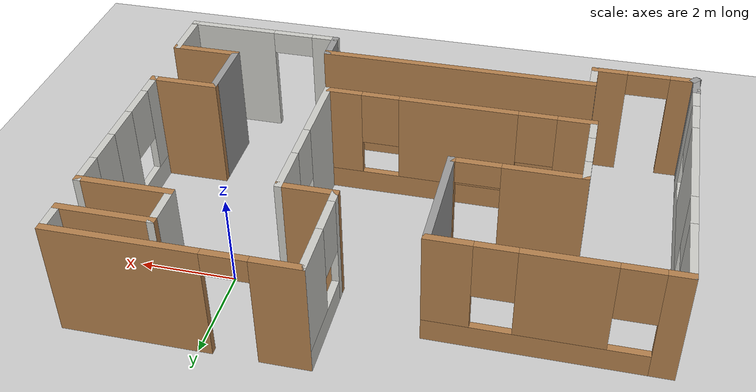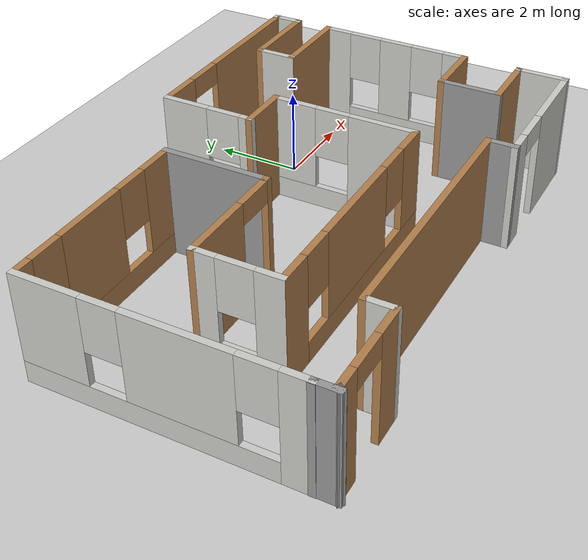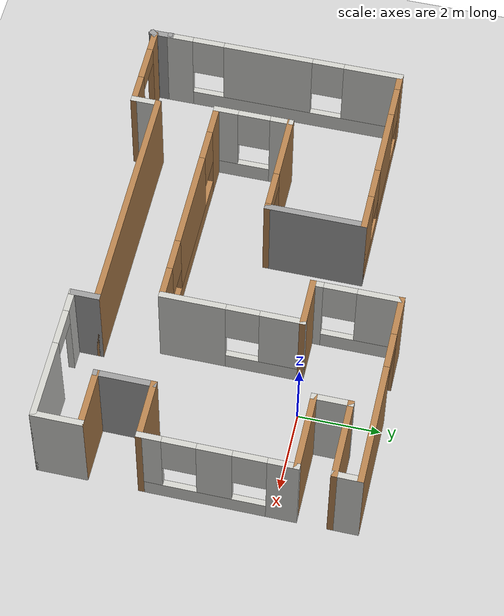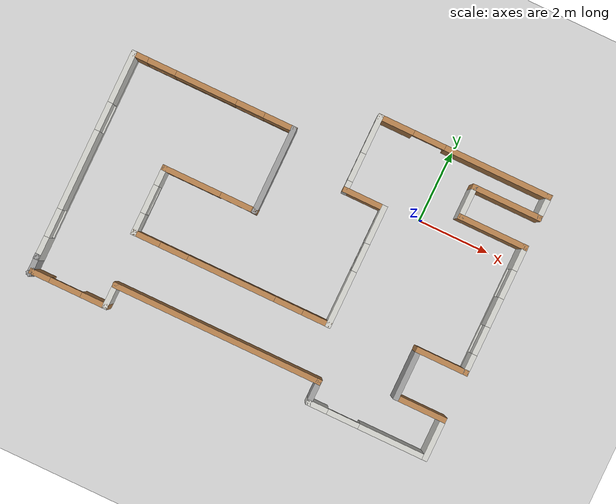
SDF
<sdf version="1.6">
 <world name="default">
  <model name="ground_plane">
   <static>1</static>
   <link name="link">
    <collision name="collision">
     <geometry><plane><normal>0 0 1</normal><size>100 100</size></plane></geometry>
     <surface>
      <contact><collide_bitmask>65535</collide_bitmask></contact>
      <friction><ode><mu>100</mu><mu2>50</mu2></ode></friction>
     </surface>
    </collision>
    <visual name="visual">
     <cast_shadows>0</cast_shadows>
     <geometry><plane><normal>0 0 1</normal><size>100 100</size></plane></geometry>
     <material>
      <script><uri>file://media/materials/scripts/gazebo.material</uri><name>Gazebo/Grey</name></script>
     </material>
    </visual>
   </link>
  </model>
  <model name="building1">
   <pose>-2.98642 -1.84689 0 0 -0 0</pose>
   <link name="Wall_0">
    <collision name="Wall_0_Collision">
     <geometry><box><size>0.16 0.15 2.5</size></box></geometry>
     <pose>0 0 1.25 0 -0 0</pose>
    </collision>
    <visual name="Wall_0_Visual">
     <pose>0 0 1.25 0 -0 0</pose>
     <geometry><box><size>0.16 0.15 2.5</size></box></geometry>
     <material>
      <script><uri>file://media/materials/scripts/gazebo.material</uri><name>Gazebo/Grey</name></script>
      <ambient>1 1 1 1</ambient>
     </material>
     <meta><layer>0</layer></meta>
    </visual>
    <pose>-5.66464 -3.30521 0 0 -0 0</pose>
   </link>
   <link name="Wall_1">
    <pose>-5.65964 -0.380215 0 0 -0 1.5708</pose>
    <visual name="Wall_1_Visual_0">
     <pose>-2.67306 0 1.25 0 -0 0</pose>
     <geometry><box><size>0.653888 0.15 2.5</size></box></geometry>
     <material>
      <script><uri>file://media/materials/scripts/gazebo.material</uri><name>Gazebo/CeilingTiled</name></script>
      <ambient>1 1 1 1</ambient>
     </material>
     <meta><layer>0</layer></meta>
    </visual>
    <collision name="Wall_1_Collision_0">
     <geometry><box><size>0.653888 0.15 2.5</size></box></geometry>
     <pose>-2.67306 0 1.25 0 -0 0</pose>
    </collision>
    <visual name="Wall_1_Visual_1">
     <pose>0.326944 0 0.25 0 -0 0</pose>
     <geometry><box><size>5.34611 0.15 0.5</size></box></geometry>
     <material>
      <script><uri>file://media/materials/scripts/gazebo.material</uri><name>Gazebo/CeilingTiled</name></script>
      <ambient>1 1 1 1</ambient>
     </material>
     <meta><layer>0</layer></meta>
    </visual>
    <collision name="Wall_1_Collision_1">
     <geometry><box><size>5.34611 0.15 0.5</size></box></geometry>
     <pose>0.326944 0 0.25 0 -0 0</pose>
    </collision>
    <visual name="Wall_1_Visual_2">
     <pose>-0.416601 0 1.5 0 -0 0</pose>
     <geometry><box><size>2.25902 0.15 2</size></box></geometry>
     <material>
      <script><uri>file://media/materials/scripts/gazebo.material</uri><name>Gazebo/CeilingTiled</name></script>
      <ambient>1 1 1 1</ambient>
     </material>
     <meta><layer>0</layer></meta>
    </visual>
    <collision name="Wall_1_Collision_2">
     <geometry><box><size>2.25902 0.15 2</size></box></geometry>
     <pose>-0.416601 0 1.5 0 -0 0</pose>
    </collision>
    <visual name="Wall_1_Visual_3">
     <pose>2.25645 0 1.5 0 -0 0</pose>
     <geometry><box><size>1.48709 0.15 2</size></box></geometry>
     <material>
      <script><uri>file://media/materials/scripts/gazebo.material</uri><name>Gazebo/CeilingTiled</name></script>
      <ambient>1 1 1 1</ambient>
     </material>
     <meta><layer>0</layer></meta>
    </visual>
    <collision name="Wall_1_Collision_3">
     <geometry><box><size>1.48709 0.15 2</size></box></geometry>
     <pose>2.25645 0 1.5 0 -0 0</pose>
    </collision>
    <visual name="Wall_1_Visual_4">
     <pose>-1.94611 0 1.9 0 -0 0</pose>
     <geometry><box><size>0.8 0.15 1.2</size></box></geometry>
     <material>
      <script><uri>file://media/materials/scripts/gazebo.material</uri><name>Gazebo/CeilingTiled</name></script>
      <ambient>1 1 1 1</ambient>
     </material>
     <meta><layer>0</layer></meta>
    </visual>
    <collision name="Wall_1_Collision_4">
     <geometry><box><size>0.8 0.15 1.2</size></box></geometry>
     <pose>-1.94611 0 1.9 0 -0 0</pose>
    </collision>
    <visual name="Wall_1_Visual_5">
     <pose>1.11291 0 1.9 0 -0 0</pose>
     <geometry><box><size>0.8 0.15 1.2</size></box></geometry>
     <material>
      <script><uri>file://media/materials/scripts/gazebo.material</uri><name>Gazebo/CeilingTiled</name></script>
      <ambient>1 1 1 1</ambient>
     </material>
     <meta><layer>0</layer></meta>
    </visual>
    <collision name="Wall_1_Collision_5">
     <geometry><box><size>0.8 0.15 1.2</size></box></geometry>
     <pose>1.11291 0 1.9 0 -0 0</pose>
    </collision>
   </link>
   <link name="Wall_10">
    <pose>3.26536 3.79479 0 0 -0 0</pose>
    <visual name="Wall_10_Visual_0">
     <pose>-1.98107 0 1.25 0 -0 0</pose>
     <geometry><box><size>1.03787 0.15 2.5</size></box></geometry>
     <material>
      <script><uri>file://media/materials/scripts/gazebo.material</uri><name>Gazebo/Wood</name></script>
      <ambient>1 1 1 1</ambient>
     </material>
     <meta><layer>0</layer></meta>
    </visual>
    <collision name="Wall_10_Collision_0">
     <geometry><box><size>1.03787 0.15 2.5</size></box></geometry>
     <pose>-1.98107 0 1.25 0 -0 0</pose>
    </collision>
    <visual name="Wall_10_Visual_1">
     <pose>0.968935 0 1.25 0 -0 0</pose>
     <geometry><box><size>3.06213 0.15 2.5</size></box></geometry>
     <material>
      <script><uri>file://media/materials/scripts/gazebo.material</uri><name>Gazebo/Wood</name></script>
      <ambient>1 1 1 1</ambient>
     </material>
     <meta><layer>0</layer></meta>
    </visual>
    <collision name="Wall_10_Collision_1">
     <geometry><box><size>3.06213 0.15 2.5</size></box></geometry>
     <pose>0.968935 0 1.25 0 -0 0</pose>
    </collision>
    <visual name="Wall_10_Visual_2">
     <pose>-1.01213 0 2.25 0 -0 0</pose>
     <geometry><box><size>0.9 0.15 0.5</size></box></geometry>
     <material>
      <script><uri>file://media/materials/scripts/gazebo.material</uri><name>Gazebo/Wood</name></script>
      <ambient>1 1 1 1</ambient>
     </material>
     <meta><layer>0</layer></meta>
    </visual>
    <collision name="Wall_10_Collision_2">
     <geometry><box><size>0.9 0.15 0.5</size></box></geometry>
     <pose>-1.01213 0 2.25 0 -0 0</pose>
    </collision>
   </link>
   <link name="Wall_11">
    <collision name="Wall_11_Collision">
     <geometry><box><size>0.75 0.15 2.5</size></box></geometry>
     <pose>0 0 1.25 0 -0 0</pose>
    </collision>
    <visual name="Wall_11_Visual">
     <pose>0 0 1.25 0 -0 0</pose>
     <geometry><box><size>0.75 0.15 2.5</size></box></geometry>
     <material>
      <script><uri>file://media/materials/scripts/gazebo.material</uri><name>Gazebo/CeilingTiled</name></script>
      <ambient>1 1 1 1</ambient>
     </material>
     <meta><layer>0</layer></meta>
    </visual>
    <pose>5.69036 3.49478 0 0 0 -1.5708</pose>
   </link>
   <link name="Wall_12">
    <collision name="Wall_12_Collision">
     <geometry><box><size>2 0.15 2.5</size></box></geometry>
     <pose>0 0 1.25 0 -0 0</pose>
    </collision>
    <visual name="Wall_12_Visual">
     <pose>0 0 1.25 0 -0 0</pose>
     <geometry><box><size>2 0.15 2.5</size></box></geometry>
     <material>
      <script><uri>file://media/materials/scripts/gazebo.material</uri><name>Gazebo/Wood</name></script>
      <ambient>1 1 1 1</ambient>
     </material>
     <meta><layer>0</layer></meta>
    </visual>
    <pose>4.76536 3.19478 0 0 -0 3.14159</pose>
   </link>
   <link name="Wall_13">
    <collision name="Wall_13_Collision">
     <geometry><box><size>1 0.15 2.5</size></box></geometry>
     <pose>0 0 1.25 0 -0 0</pose>
    </collision>
    <visual name="Wall_13_Visual">
     <pose>0 0 1.25 0 -0 0</pose>
     <geometry><box><size>1 0.15 2.5</size></box></geometry>
     <material>
      <script><uri>file://media/materials/scripts/gazebo.material</uri><name>Gazebo/CeilingTiled</name></script>
      <ambient>1 1 1 1</ambient>
     </material>
     <meta><layer>0</layer></meta>
    </visual>
    <pose>3.84036 2.76979 0 0 0 -1.5708</pose>
   </link>
   <link name="Wall_14">
    <collision name="Wall_14_Collision">
     <geometry><box><size>2 0.15 2.5</size></box></geometry>
     <pose>0 0 1.25 0 -0 0</pose>
    </collision>
    <visual name="Wall_14_Visual">
     <pose>0 0 1.25 0 -0 0</pose>
     <geometry><box><size>2 0.15 2.5</size></box></geometry>
     <material>
      <script><uri>file://media/materials/scripts/gazebo.material</uri><name>Gazebo/Wood</name></script>
      <ambient>1 1 1 1</ambient>
     </material>
     <meta><layer>0</layer></meta>
    </visual>
    <pose>4.76536 2.34478 0 0 -0 0</pose>
   </link>
   <link name="Wall_15">
    <pose>5.69036 0.544785 0 0 0 -1.5708</pose>
    <visual name="Wall_15_Visual_0">
     <pose>-1.50677 0 1.25 0 -0 0</pose>
     <geometry><box><size>0.736466 0.15 2.5</size></box></geometry>
     <material>
      <script><uri>file://media/materials/scripts/gazebo.material</uri><name>Gazebo/CeilingTiled</name></script>
      <ambient>1 1 1 1</ambient>
     </material>
     <meta><layer>0</layer></meta>
    </visual>
    <collision name="Wall_15_Collision_0">
     <geometry><box><size>0.736466 0.15 2.5</size></box></geometry>
     <pose>-1.50677 0 1.25 0 -0 0</pose>
    </collision>
    <visual name="Wall_15_Visual_1">
     <pose>0.368233 0 0.25 0 -0 0</pose>
     <geometry><box><size>3.01353 0.15 0.5</size></box></geometry>
     <material>
      <script><uri>file://media/materials/scripts/gazebo.material</uri><name>Gazebo/CeilingTiled</name></script>
      <ambient>1 1 1 1</ambient>
     </material>
     <meta><layer>0</layer></meta>
    </visual>
    <collision name="Wall_15_Collision_1">
     <geometry><box><size>3.01353 0.15 0.5</size></box></geometry>
     <pose>0.368233 0 0.25 0 -0 0</pose>
    </collision>
    <visual name="Wall_15_Visual_2">
     <pose>0.072107 0 1.5 0 -0 0</pose>
     <geometry><box><size>0.821282 0.15 2</size></box></geometry>
     <material>
      <script><uri>file://media/materials/scripts/gazebo.material</uri><name>Gazebo/CeilingTiled</name></script>
      <ambient>1 1 1 1</ambient>
     </material>
     <meta><layer>0</layer></meta>
    </visual>
    <collision name="Wall_15_Collision_2">
     <geometry><box><size>0.821282 0.15 2</size></box></geometry>
     <pose>0.072107 0 1.5 0 -0 0</pose>
    </collision>
    <visual name="Wall_15_Visual_3">
     <pose>1.57887 0 1.5 0 -0 0</pose>
     <geometry><box><size>0.592252 0.15 2</size></box></geometry>
     <material>
      <script><uri>file://media/materials/scripts/gazebo.material</uri><name>Gazebo/CeilingTiled</name></script>
      <ambient>1 1 1 1</ambient>
     </material>
     <meta><layer>0</layer></meta>
    </visual>
    <collision name="Wall_15_Collision_3">
     <geometry><box><size>0.592252 0.15 2</size></box></geometry>
     <pose>1.57887 0 1.5 0 -0 0</pose>
    </collision>
    <visual name="Wall_15_Visual_4">
     <pose>-0.738534 0 1.9 0 -0 0</pose>
     <geometry><box><size>0.8 0.15 1.2</size></box></geometry>
     <material>
      <script><uri>file://media/materials/scripts/gazebo.material</uri><name>Gazebo/CeilingTiled</name></script>
      <ambient>1 1 1 1</ambient>
     </material>
     <meta><layer>0</layer></meta>
    </visual>
    <collision name="Wall_15_Collision_4">
     <geometry><box><size>0.8 0.15 1.2</size></box></geometry>
     <pose>-0.738534 0 1.9 0 -0 0</pose>
    </collision>
    <visual name="Wall_15_Visual_5">
     <pose>0.882748 0 1.9 0 -0 0</pose>
     <geometry><box><size>0.8 0.15 1.2</size></box></geometry>
     <material>
      <script><uri>file://media/materials/scripts/gazebo.material</uri><name>Gazebo/CeilingTiled</name></script>
      <ambient>1 1 1 1</ambient>
     </material>
     <meta><layer>0</layer></meta>
    </visual>
    <collision name="Wall_15_Collision_5">
     <geometry><box><size>0.8 0.15 1.2</size></box></geometry>
     <pose>0.882748 0 1.9 0 -0 0</pose>
    </collision>
   </link>
   <link name="Wall_16">
    <collision name="Wall_16_Collision">
     <geometry><box><size>1.5 0.15 2.5</size></box></geometry>
     <pose>0 0 1.25 0 -0 0</pose>
    </collision>
    <visual name="Wall_16_Visual">
     <pose>0 0 1.25 0 -0 0</pose>
     <geometry><box><size>1.5 0.15 2.5</size></box></geometry>
     <material>
      <script><uri>file://media/materials/scripts/gazebo.material</uri><name>Gazebo/Wood</name></script>
      <ambient>1 1 1 1</ambient>
     </material>
     <meta><layer>0</layer></meta>
    </visual>
    <pose>5.01536 -1.25521 0 0 -0 3.14159</pose>
   </link>
   <link name="Wall_17">
    <collision name="Wall_17_Collision">
     <geometry><box><size>1.5 0.15 2.5</size></box></geometry>
     <pose>0 0 1.25 0 -0 0</pose>
    </collision>
    <visual name="Wall_17_Visual">
     <pose>0 0 1.25 0 -0 0</pose>
     <geometry><box><size>1.5 0.15 2.5</size></box></geometry>
     <material>
      <script><uri>file://media/materials/scripts/gazebo.material</uri><name>Gazebo/Grey</name></script>
      <ambient>1 1 1 1</ambient>
     </material>
     <meta><layer>0</layer></meta>
    </visual>
    <pose>4.34036 -1.93022 0 0 0 -1.5708</pose>
   </link>
   <link name="Wall_18">
    <collision name="Wall_18_Collision">
     <geometry><box><size>1.5 0.15 2.5</size></box></geometry>
     <pose>0 0 1.25 0 -0 0</pose>
    </collision>
    <visual name="Wall_18_Visual">
     <pose>0 0 1.25 0 -0 0</pose>
     <geometry><box><size>1.5 0.15 2.5</size></box></geometry>
     <material>
      <script><uri>file://media/materials/scripts/gazebo.material</uri><name>Gazebo/Wood</name></script>
      <ambient>1 1 1 1</ambient>
     </material>
     <meta><layer>0</layer></meta>
    </visual>
    <pose>5.01536 -2.60521 0 0 -0 0</pose>
   </link>
   <link name="Wall_19">
    <collision name="Wall_19_Collision">
     <geometry><box><size>1.25 0.15 2.5</size></box></geometry>
     <pose>0 0 1.25 0 -0 0</pose>
    </collision>
    <visual name="Wall_19_Visual">
     <pose>0 0 1.25 0 -0 0</pose>
     <geometry><box><size>1.25 0.15 2.5</size></box></geometry>
     <material>
      <script><uri>file://media/materials/scripts/gazebo.material</uri><name>Gazebo/CeilingTiled</name></script>
      <ambient>1 1 1 1</ambient>
     </material>
     <meta><layer>0</layer></meta>
    </visual>
    <pose>5.69036 -3.15522 0 0 0 -1.5708</pose>
   </link>
   <link name="Wall_2">
    <pose>-3.35964 2.54479 0 0 -0 0</pose>
    <visual name="Wall_2_Visual_0">
     <pose>-2.12953 0 1.25 0 -0 0</pose>
     <geometry><box><size>0.490936 0.15 2.5</size></box></geometry>
     <material>
      <script><uri>file://media/materials/scripts/gazebo.material</uri><name>Gazebo/Wood</name></script>
      <ambient>1 1 1 1</ambient>
     </material>
     <meta><layer>0</layer></meta>
    </visual>
    <collision name="Wall_2_Collision_0">
     <geometry><box><size>0.490936 0.15 2.5</size></box></geometry>
     <pose>-2.12953 0 1.25 0 -0 0</pose>
    </collision>
    <visual name="Wall_2_Visual_1">
     <pose>0.245468 0 0.25 0 -0 0</pose>
     <geometry><box><size>4.25906 0.15 0.5</size></box></geometry>
     <material>
      <script><uri>file://media/materials/scripts/gazebo.material</uri><name>Gazebo/Wood</name></script>
      <ambient>1 1 1 1</ambient>
     </material>
     <meta><layer>0</layer></meta>
    </visual>
    <collision name="Wall_2_Collision_1">
     <geometry><box><size>4.25906 0.15 0.5</size></box></geometry>
     <pose>0.245468 0 0.25 0 -0 0</pose>
    </collision>
    <visual name="Wall_2_Visual_2">
     <pose>-0.21457 0 1.5 0 -0 0</pose>
     <geometry><box><size>1.73899 0.15 2</size></box></geometry>
     <material>
      <script><uri>file://media/materials/scripts/gazebo.material</uri><name>Gazebo/Wood</name></script>
      <ambient>1 1 1 1</ambient>
     </material>
     <meta><layer>0</layer></meta>
    </visual>
    <collision name="Wall_2_Collision_2">
     <geometry><box><size>1.73899 0.15 2</size></box></geometry>
     <pose>-0.21457 0 1.5 0 -0 0</pose>
    </collision>
    <visual name="Wall_2_Visual_3">
     <pose>1.91496 0 1.5 0 -0 0</pose>
     <geometry><box><size>0.920075 0.15 2</size></box></geometry>
     <material>
      <script><uri>file://media/materials/scripts/gazebo.material</uri><name>Gazebo/Wood</name></script>
      <ambient>1 1 1 1</ambient>
     </material>
     <meta><layer>0</layer></meta>
    </visual>
    <collision name="Wall_2_Collision_3">
     <geometry><box><size>0.920075 0.15 2</size></box></geometry>
     <pose>1.91496 0 1.5 0 -0 0</pose>
    </collision>
    <visual name="Wall_2_Visual_4">
     <pose>-1.48406 0 1.9 0 -0 0</pose>
     <geometry><box><size>0.8 0.15 1.2</size></box></geometry>
     <material>
      <script><uri>file://media/materials/scripts/gazebo.material</uri><name>Gazebo/Wood</name></script>
      <ambient>1 1 1 1</ambient>
     </material>
     <meta><layer>0</layer></meta>
    </visual>
    <collision name="Wall_2_Collision_4">
     <geometry><box><size>0.8 0.15 1.2</size></box></geometry>
     <pose>-1.48406 0 1.9 0 -0 0</pose>
    </collision>
    <visual name="Wall_2_Visual_5">
     <pose>1.05492 0 1.9 0 -0 0</pose>
     <geometry><box><size>0.8 0.15 1.2</size></box></geometry>
     <material>
      <script><uri>file://media/materials/scripts/gazebo.material</uri><name>Gazebo/Wood</name></script>
      <ambient>1 1 1 1</ambient>
     </material>
     <meta><layer>0</layer></meta>
    </visual>
    <collision name="Wall_2_Collision_5">
     <geometry><box><size>0.8 0.15 1.2</size></box></geometry>
     <pose>1.05492 0 1.9 0 -0 0</pose>
    </collision>
   </link>
   <link name="Wall_20">
    <pose>4.01536 -3.70521 0 0 -0 3.14159</pose>
    <visual name="Wall_20_Visual_0">
     <pose>-0.754264 0 1.25 0 -0 0</pose>
     <geometry><box><size>1.99147 0.15 2.5</size></box></geometry>
     <material>
      <script><uri>file://media/materials/scripts/gazebo.material</uri><name>Gazebo/CeilingTiled</name></script>
      <ambient>1 1 1 1</ambient>
     </material>
     <meta><layer>0</layer></meta>
    </visual>
    <collision name="Wall_20_Collision_0">
     <geometry><box><size>1.99147 0.15 2.5</size></box></geometry>
     <pose>-0.754264 0 1.25 0 -0 0</pose>
    </collision>
    <visual name="Wall_20_Visual_1">
     <pose>1.44574 0 1.25 0 -0 0</pose>
     <geometry><box><size>0.608527 0.15 2.5</size></box></geometry>
     <material>
      <script><uri>file://media/materials/scripts/gazebo.material</uri><name>Gazebo/CeilingTiled</name></script>
      <ambient>1 1 1 1</ambient>
     </material>
     <meta><layer>0</layer></meta>
    </visual>
    <collision name="Wall_20_Collision_1">
     <geometry><box><size>0.608527 0.15 2.5</size></box></geometry>
     <pose>1.44574 0 1.25 0 -0 0</pose>
    </collision>
    <visual name="Wall_20_Visual_2">
     <pose>0.691473 0 2.25 0 -0 0</pose>
     <geometry><box><size>0.9 0.15 0.5</size></box></geometry>
     <material>
      <script><uri>file://media/materials/scripts/gazebo.material</uri><name>Gazebo/CeilingTiled</name></script>
      <ambient>1 1 1 1</ambient>
     </material>
     <meta><layer>0</layer></meta>
    </visual>
    <collision name="Wall_20_Collision_2">
     <geometry><box><size>0.9 0.15 0.5</size></box></geometry>
     <pose>0.691473 0 2.25 0 -0 0</pose>
    </collision>
   </link>
   <link name="Wall_21">
    <collision name="Wall_21_Collision">
     <geometry><box><size>0.75 0.15 2.5</size></box></geometry>
     <pose>0 0 1.25 0 -0 0</pose>
    </collision>
    <visual name="Wall_21_Visual">
     <pose>0 0 1.25 0 -0 0</pose>
     <geometry><box><size>0.75 0.15 2.5</size></box></geometry>
     <material>
      <script><uri>file://media/materials/scripts/gazebo.material</uri><name>Gazebo/Grey</name></script>
      <ambient>1 1 1 1</ambient>
     </material>
     <meta><layer>0</layer></meta>
    </visual>
    <pose>2.34036 -3.40522 0 0 -0 1.5708</pose>
   </link>
   <link name="Wall_22">
    <collision name="Wall_22_Collision">
     <geometry><box><size>6 0.15 2.5</size></box></geometry>
     <pose>0 0 1.25 0 -0 0</pose>
    </collision>
    <visual name="Wall_22_Visual">
     <pose>0 0 1.25 0 -0 0</pose>
     <geometry><box><size>6 0.15 2.5</size></box></geometry>
     <material>
      <script><uri>file://media/materials/scripts/gazebo.material</uri><name>Gazebo/Wood</name></script>
      <ambient>1 0.764706 0.305882 1</ambient>
     </material>
     <meta><layer>0</layer></meta>
    </visual>
    <pose>-0.584642 -3.10521 0 0 -0 3.14159</pose>
   </link>
   <link name="Wall_23">
    <collision name="Wall_23_Collision">
     <geometry><box><size>0.75 0.15 2.5</size></box></geometry>
     <pose>0 0 1.25 0 -0 0</pose>
    </collision>
    <visual name="Wall_23_Visual">
     <pose>0 0 1.25 0 -0 0</pose>
     <geometry><box><size>0.75 0.15 2.5</size></box></geometry>
     <material>
      <script><uri>file://media/materials/scripts/gazebo.material</uri><name>Gazebo/CeilingTiled</name></script>
      <ambient>1 1 1 1</ambient>
     </material>
     <meta><layer>0</layer></meta>
    </visual>
    <pose>-3.50964 -3.40522 0 0 0 -1.5708</pose>
   </link>
   <link name="Wall_24">
    <pose>-4.55964 -3.70521 0 0 -0 3.14159</pose>
    <visual name="Wall_24_Visual_0">
     <pose>-0.737239 0 1.25 0 -0 0</pose>
     <geometry><box><size>0.775523 0.15 2.5</size></box></geometry>
     <material>
      <script><uri>file://media/materials/scripts/gazebo.material</uri><name>Gazebo/Wood</name></script>
      <ambient>1 1 1 1</ambient>
     </material>
     <meta><layer>0</layer></meta>
    </visual>
    <collision name="Wall_24_Collision_0">
     <geometry><box><size>0.775523 0.15 2.5</size></box></geometry>
     <pose>-0.737239 0 1.25 0 -0 0</pose>
    </collision>
    <visual name="Wall_24_Visual_1">
     <pose>0.837761 0 1.25 0 -0 0</pose>
     <geometry><box><size>0.574477 0.15 2.5</size></box></geometry>
     <material>
      <script><uri>file://media/materials/scripts/gazebo.material</uri><name>Gazebo/Wood</name></script>
      <ambient>1 1 1 1</ambient>
     </material>
     <meta><layer>0</layer></meta>
    </visual>
    <collision name="Wall_24_Collision_1">
     <geometry><box><size>0.574477 0.15 2.5</size></box></geometry>
     <pose>0.837761 0 1.25 0 -0 0</pose>
    </collision>
    <visual name="Wall_24_Visual_2">
     <pose>0.100523 0 2.25 0 -0 0</pose>
     <geometry><box><size>0.9 0.15 0.5</size></box></geometry>
     <material>
      <script><uri>file://media/materials/scripts/gazebo.material</uri><name>Gazebo/Wood</name></script>
      <ambient>1 1 1 1</ambient>
     </material>
     <meta><layer>0</layer></meta>
    </visual>
    <collision name="Wall_24_Collision_2">
     <geometry><box><size>0.9 0.15 0.5</size></box></geometry>
     <pose>0.100523 0 2.25 0 -0 0</pose>
    </collision>
   </link>
   <link name="Wall_27">
    <collision name="Wall_27_Collision">
     <geometry><box><size>0.227225 0.15 2.5</size></box></geometry>
     <pose>0 0 1.25 0 -0 0</pose>
    </collision>
    <visual name="Wall_27_Visual">
     <pose>0 0 1.25 0 -0 0</pose>
     <geometry><box><size>0.227225 0.15 2.5</size></box></geometry>
     <material>
      <script><uri>file://media/materials/scripts/gazebo.material</uri><name>Gazebo/Grey</name></script>
      <ambient>1 1 1 1</ambient>
     </material>
     <meta><layer>0</layer></meta>
    </visual>
    <pose>-5.63464 -3.73464 0 0 0 -2.27504</pose>
   </link>
   <link name="Wall_28">
    <collision name="Wall_28_Collision">
     <geometry><box><size>0.608853 0.15 2.5</size></box></geometry>
     <pose>0 0 1.25 0 -0 0</pose>
    </collision>
    <visual name="Wall_28_Visual">
     <pose>0 0 1.25 0 -0 0</pose>
     <geometry><box><size>0.608853 0.15 2.5</size></box></geometry>
     <material>
      <script><uri>file://media/materials/scripts/gazebo.material</uri><name>Gazebo/Grey</name></script>
      <ambient>1 1 1 1</ambient>
     </material>
     <meta><layer>0</layer></meta>
    </visual>
    <pose>-5.65964 -3.53464 0 0 -0 1.5708</pose>
   </link>
   <link name="Wall_3">
    <collision name="Wall_3_Collision">
     <geometry><box><size>2.5 0.15 2.5</size></box></geometry>
     <pose>0 0 1.25 0 -0 0</pose>
    </collision>
    <visual name="Wall_3_Visual">
     <pose>0 0 1.25 0 -0 0</pose>
     <geometry><box><size>2.5 0.15 2.5</size></box></geometry>
     <material>
      <script><uri>file://media/materials/scripts/gazebo.material</uri><name>Gazebo/Grey</name></script>
      <ambient>1 1 1 1</ambient>
     </material>
     <meta><layer>0</layer></meta>
    </visual>
    <pose>-1.05964 1.36979 0 0 0 -1.5708</pose>
   </link>
   <link name="Wall_4">
    <pose>-2.35964 0.194785 0 0 -0 3.14159</pose>
    <visual name="Wall_4_Visual_0">
     <pose>-1.29175 0 1.25 0 -0 0</pose>
     <geometry><box><size>0.1665 0.15 2.5</size></box></geometry>
     <material>
      <script><uri>file://media/materials/scripts/gazebo.material</uri><name>Gazebo/Wood</name></script>
      <ambient>1 1 1 1</ambient>
     </material>
     <meta><layer>0</layer></meta>
    </visual>
    <collision name="Wall_4_Collision_0">
     <geometry><box><size>0.1665 0.15 2.5</size></box></geometry>
     <pose>-1.29175 0 1.25 0 -0 0</pose>
    </collision>
    <visual name="Wall_4_Visual_1">
     <pose>0.53325 0 1.25 0 -0 0</pose>
     <geometry><box><size>1.6835 0.15 2.5</size></box></geometry>
     <material>
      <script><uri>file://media/materials/scripts/gazebo.material</uri><name>Gazebo/Wood</name></script>
      <ambient>1 1 1 1</ambient>
     </material>
     <meta><layer>0</layer></meta>
    </visual>
    <collision name="Wall_4_Collision_1">
     <geometry><box><size>1.6835 0.15 2.5</size></box></geometry>
     <pose>0.53325 0 1.25 0 -0 0</pose>
    </collision>
    <visual name="Wall_4_Visual_2">
     <pose>-0.7585 0 2.25 0 -0 0</pose>
     <geometry><box><size>0.9 0.15 0.5</size></box></geometry>
     <material>
      <script><uri>file://media/materials/scripts/gazebo.material</uri><name>Gazebo/Wood</name></script>
      <ambient>1 1 1 1</ambient>
     </material>
     <meta><layer>0</layer></meta>
    </visual>
    <collision name="Wall_4_Collision_2">
     <geometry><box><size>0.9 0.15 0.5</size></box></geometry>
     <pose>-0.7585 0 2.25 0 -0 0</pose>
    </collision>
   </link>
   <link name="Wall_5">
    <pose>-3.65964 -0.730215 0 0 0 -1.5708</pose>
    <visual name="Wall_5_Visual_0">
     <pose>-0.712585 0 1.25 0 -0 0</pose>
     <geometry><box><size>0.574831 0.15 2.5</size></box></geometry>
     <material>
      <script><uri>file://media/materials/scripts/gazebo.material</uri><name>Gazebo/CeilingTiled</name></script>
      <ambient>1 1 1 1</ambient>
     </material>
     <meta><layer>0</layer></meta>
    </visual>
    <collision name="Wall_5_Collision_0">
     <geometry><box><size>0.574831 0.15 2.5</size></box></geometry>
     <pose>-0.712585 0 1.25 0 -0 0</pose>
    </collision>
    <visual name="Wall_5_Visual_1">
     <pose>0.287415 0 0.25 0 -0 0</pose>
     <geometry><box><size>1.42517 0.15 0.5</size></box></geometry>
     <material>
      <script><uri>file://media/materials/scripts/gazebo.material</uri><name>Gazebo/CeilingTiled</name></script>
      <ambient>1 1 1 1</ambient>
     </material>
     <meta><layer>0</layer></meta>
    </visual>
    <collision name="Wall_5_Collision_1">
     <geometry><box><size>1.42517 0.15 0.5</size></box></geometry>
     <pose>0.287415 0 0.25 0 -0 0</pose>
    </collision>
    <visual name="Wall_5_Visual_2">
     <pose>0.687415 0 1.5 0 -0 0</pose>
     <geometry><box><size>0.625169 0.15 2</size></box></geometry>
     <material>
      <script><uri>file://media/materials/scripts/gazebo.material</uri><name>Gazebo/CeilingTiled</name></script>
      <ambient>1 1 1 1</ambient>
     </material>
     <meta><layer>0</layer></meta>
    </visual>
    <collision name="Wall_5_Collision_2">
     <geometry><box><size>0.625169 0.15 2</size></box></geometry>
     <pose>0.687415 0 1.5 0 -0 0</pose>
    </collision>
    <visual name="Wall_5_Visual_3">
     <pose>-0.025169 0 1.9 0 -0 0</pose>
     <geometry><box><size>0.8 0.15 1.2</size></box></geometry>
     <material>
      <script><uri>file://media/materials/scripts/gazebo.material</uri><name>Gazebo/CeilingTiled</name></script>
      <ambient>1 1 1 1</ambient>
     </material>
     <meta><layer>0</layer></meta>
    </visual>
    <collision name="Wall_5_Collision_3">
     <geometry><box><size>0.8 0.15 1.2</size></box></geometry>
     <pose>-0.025169 0 1.9 0 -0 0</pose>
    </collision>
   </link>
   <link name="Wall_6">
    <pose>-0.859642 -1.65522 0 0 -0 0</pose>
    <visual name="Wall_6_Visual_0">
     <pose>-2.4671 0 1.25 0 -0 0</pose>
     <geometry><box><size>0.815794 0.15 2.5</size></box></geometry>
     <material>
      <script><uri>file://media/materials/scripts/gazebo.material</uri><name>Gazebo/Wood</name></script>
      <ambient>0.996078 0.47451 0.0196078 1</ambient>
     </material>
     <meta><layer>0</layer></meta>
    </visual>
    <collision name="Wall_6_Collision_0">
     <geometry><box><size>0.815794 0.15 2.5</size></box></geometry>
     <pose>-2.4671 0 1.25 0 -0 0</pose>
    </collision>
    <visual name="Wall_6_Visual_1">
     <pose>0.407897 0 0.25 0 -0 0</pose>
     <geometry><box><size>4.93421 0.15 0.5</size></box></geometry>
     <material>
      <script><uri>file://media/materials/scripts/gazebo.material</uri><name>Gazebo/Wood</name></script>
      <ambient>0.996078 0.47451 0.0196078 1</ambient>
     </material>
     <meta><layer>0</layer></meta>
    </visual>
    <collision name="Wall_6_Collision_1">
     <geometry><box><size>4.93421 0.15 0.5</size></box></geometry>
     <pose>0.407897 0 0.25 0 -0 0</pose>
    </collision>
    <visual name="Wall_6_Visual_2">
     <pose>-0.007334 0 1.5 0 -0 0</pose>
     <geometry><box><size>2.50374 0.15 2</size></box></geometry>
     <material>
      <script><uri>file://media/materials/scripts/gazebo.material</uri><name>Gazebo/Wood</name></script>
      <ambient>0.996078 0.47451 0.0196078 1</ambient>
     </material>
     <meta><layer>0</layer></meta>
    </visual>
    <collision name="Wall_6_Collision_2">
     <geometry><box><size>2.50374 0.15 2</size></box></geometry>
     <pose>-0.007334 0 1.5 0 -0 0</pose>
    </collision>
    <visual name="Wall_6_Visual_3">
     <pose>2.45977 0 1.5 0 -0 0</pose>
     <geometry><box><size>0.830462 0.15 2</size></box></geometry>
     <material>
      <script><uri>file://media/materials/scripts/gazebo.material</uri><name>Gazebo/Wood</name></script>
      <ambient>0.996078 0.47451 0.0196078 1</ambient>
     </material>
     <meta><layer>0</layer></meta>
    </visual>
    <collision name="Wall_6_Collision_3">
     <geometry><box><size>0.830462 0.15 2</size></box></geometry>
     <pose>2.45977 0 1.5 0 -0 0</pose>
    </collision>
    <visual name="Wall_6_Visual_4">
     <pose>-1.65921 0 1.9 0 -0 0</pose>
     <geometry><box><size>0.8 0.15 1.2</size></box></geometry>
     <material>
      <script><uri>file://media/materials/scripts/gazebo.material</uri><name>Gazebo/Wood</name></script>
      <ambient>0.996078 0.47451 0.0196078 1</ambient>
     </material>
     <meta><layer>0</layer></meta>
    </visual>
    <collision name="Wall_6_Collision_4">
     <geometry><box><size>0.8 0.15 1.2</size></box></geometry>
     <pose>-1.65921 0 1.9 0 -0 0</pose>
    </collision>
    <visual name="Wall_6_Visual_5">
     <pose>1.64454 0 1.9 0 -0 0</pose>
     <geometry><box><size>0.8 0.15 1.2</size></box></geometry>
     <material>
      <script><uri>file://media/materials/scripts/gazebo.material</uri><name>Gazebo/Wood</name></script>
      <ambient>0.996078 0.47451 0.0196078 1</ambient>
     </material>
     <meta><layer>0</layer></meta>
    </visual>
    <collision name="Wall_6_Collision_5">
     <geometry><box><size>0.8 0.15 1.2</size></box></geometry>
     <pose>1.64454 0 1.9 0 -0 0</pose>
    </collision>
   </link>
   <link name="Wall_7">
    <pose>1.94036 0.019785 0 0 -0 1.5708</pose>
    <visual name="Wall_7_Visual_0">
     <pose>-0.947972 0 1.25 0 -0 0</pose>
     <geometry><box><size>1.60406 0.15 2.5</size></box></geometry>
     <material>
      <script><uri>file://media/materials/scripts/gazebo.material</uri><name>Gazebo/CeilingTiled</name></script>
      <ambient>1 1 1 1</ambient>
     </material>
     <meta><layer>0</layer></meta>
    </visual>
    <collision name="Wall_7_Collision_0">
     <geometry><box><size>1.60406 0.15 2.5</size></box></geometry>
     <pose>-0.947972 0 1.25 0 -0 0</pose>
    </collision>
    <visual name="Wall_7_Visual_1">
     <pose>0.802028 0 0.25 0 -0 0</pose>
     <geometry><box><size>1.89594 0.15 0.5</size></box></geometry>
     <material>
      <script><uri>file://media/materials/scripts/gazebo.material</uri><name>Gazebo/CeilingTiled</name></script>
      <ambient>1 1 1 1</ambient>
     </material>
     <meta><layer>0</layer></meta>
    </visual>
    <collision name="Wall_7_Collision_1">
     <geometry><box><size>1.89594 0.15 0.5</size></box></geometry>
     <pose>0.802028 0 0.25 0 -0 0</pose>
    </collision>
    <visual name="Wall_7_Visual_2">
     <pose>1.20203 0 1.5 0 -0 0</pose>
     <geometry><box><size>1.09594 0.15 2</size></box></geometry>
     <material>
      <script><uri>file://media/materials/scripts/gazebo.material</uri><name>Gazebo/CeilingTiled</name></script>
      <ambient>1 1 1 1</ambient>
     </material>
     <meta><layer>0</layer></meta>
    </visual>
    <collision name="Wall_7_Collision_2">
     <geometry><box><size>1.09594 0.15 2</size></box></geometry>
     <pose>1.20203 0 1.5 0 -0 0</pose>
    </collision>
    <visual name="Wall_7_Visual_3">
     <pose>0.254057 0 1.9 0 -0 0</pose>
     <geometry><box><size>0.8 0.15 1.2</size></box></geometry>
     <material>
      <script><uri>file://media/materials/scripts/gazebo.material</uri><name>Gazebo/CeilingTiled</name></script>
      <ambient>1 1 1 1</ambient>
     </material>
     <meta><layer>0</layer></meta>
    </visual>
    <collision name="Wall_7_Collision_3">
     <geometry><box><size>0.8 0.15 1.2</size></box></geometry>
     <pose>0.254057 0 1.9 0 -0 0</pose>
    </collision>
   </link>
   <link name="Wall_8">
    <collision name="Wall_8_Collision">
     <geometry><box><size>1.25 0.15 2.5</size></box></geometry>
     <pose>0 0 1.25 0 -0 0</pose>
    </collision>
    <visual name="Wall_8_Visual">
     <pose>0 0 1.25 0 -0 0</pose>
     <geometry><box><size>1.25 0.15 2.5</size></box></geometry>
     <material>
      <script><uri>file://media/materials/scripts/gazebo.material</uri><name>Gazebo/Wood</name></script>
      <ambient>1 1 1 1</ambient>
     </material>
     <meta><layer>0</layer></meta>
    </visual>
    <pose>1.39036 1.69478 0 0 -0 3.14159</pose>
   </link>
   <link name="Wall_9">
    <pose>0.840358 2.74478 0 0 -0 1.5708</pose>
    <visual name="Wall_9_Visual_0">
     <pose>-0.957904 0 1.25 0 -0 0</pose>
     <geometry><box><size>0.334192 0.15 2.5</size></box></geometry>
     <material>
      <script><uri>file://media/materials/scripts/gazebo.material</uri><name>Gazebo/CeilingTiled</name></script>
      <ambient>1 1 1 1</ambient>
     </material>
     <meta><layer>0</layer></meta>
    </visual>
    <collision name="Wall_9_Collision_0">
     <geometry><box><size>0.334192 0.15 2.5</size></box></geometry>
     <pose>-0.957904 0 1.25 0 -0 0</pose>
    </collision>
    <visual name="Wall_9_Visual_1">
     <pose>0.167096 0 0.25 0 -0 0</pose>
     <geometry><box><size>1.91581 0.15 0.5</size></box></geometry>
     <material>
      <script><uri>file://media/materials/scripts/gazebo.material</uri><name>Gazebo/CeilingTiled</name></script>
      <ambient>1 1 1 1</ambient>
     </material>
     <meta><layer>0</layer></meta>
    </visual>
    <collision name="Wall_9_Collision_1">
     <geometry><box><size>1.91581 0.15 0.5</size></box></geometry>
     <pose>0.167096 0 0.25 0 -0 0</pose>
    </collision>
    <visual name="Wall_9_Visual_2">
     <pose>0.567096 0 1.5 0 -0 0</pose>
     <geometry><box><size>1.11581 0.15 2</size></box></geometry>
     <material>
      <script><uri>file://media/materials/scripts/gazebo.material</uri><name>Gazebo/CeilingTiled</name></script>
      <ambient>1 1 1 1</ambient>
     </material>
     <meta><layer>0</layer></meta>
    </visual>
    <collision name="Wall_9_Collision_2">
     <geometry><box><size>1.11581 0.15 2</size></box></geometry>
     <pose>0.567096 0 1.5 0 -0 0</pose>
    </collision>
    <visual name="Wall_9_Visual_3">
     <pose>-0.390808 0 1.9 0 -0 0</pose>
     <geometry><box><size>0.8 0.15 1.2</size></box></geometry>
     <material>
      <script><uri>file://media/materials/scripts/gazebo.material</uri><name>Gazebo/CeilingTiled</name></script>
      <ambient>1 1 1 1</ambient>
     </material>
     <meta><layer>0</layer></meta>
    </visual>
    <collision name="Wall_9_Collision_3">
     <geometry><box><size>0.8 0.15 1.2</size></box></geometry>
     <pose>-0.390808 0 1.9 0 -0 0</pose>
    </collision>
   </link>
   <static>1</static>
  </model>
 </world>
</sdf>
